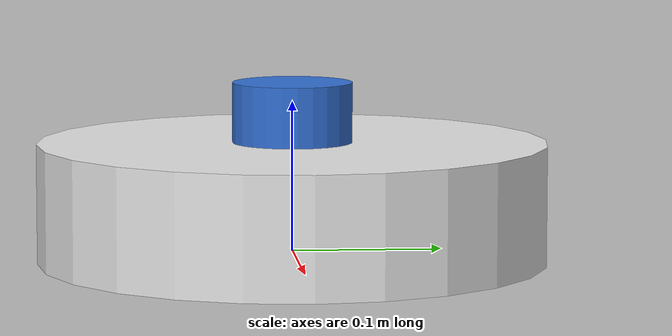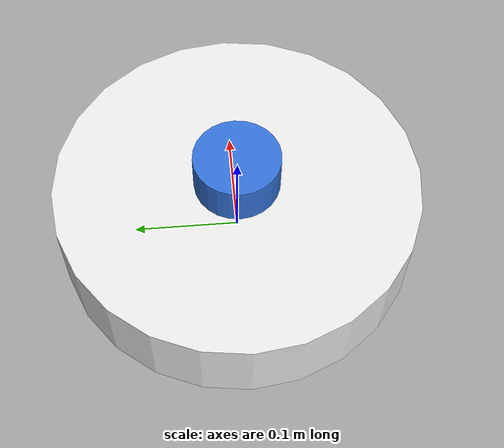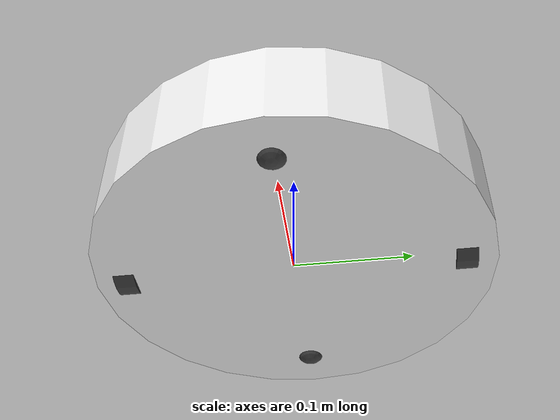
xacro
<?xml version="1.0"?>
<robot name="cleaning_robot" xmlns:xacro="http://www.ros.org/wiki/xacro">
  <xacro:include filename="$(find cleaning_robot_description)/urdf/materials.xacro"/>
  <xacro:include filename="$(find cleaning_robot_description)/urdf/base.xacro"/>
  <xacro:include filename="$(find cleaning_robot_description)/urdf/sensors.xacro"/>

  <gazebo>
    <plugin name="gazebo_ros_planar_move" filename="libgazebo_ros_planar_move.so">
      <ros>
        <remapping>cmd_vel:=cmd_vel</remapping>
        <remapping>odometry:=odom</remapping>
      </ros>
      <publish_odom>true</publish_odom>
      <publish_odom_tf>true</publish_odom_tf>
      <odometry_frame>odom</odometry_frame>
      <robot_base_frame>base_footprint</robot_base_frame>
    </plugin>
  </gazebo>
</robot>

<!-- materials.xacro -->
<robot xmlns:xacro="http://www.ros.org/wiki/xacro">
  <material name="white">
    <color rgba="0.92 0.92 0.92 1.0"/>
  </material>

  <material name="dark_grey">
    <color rgba="0.25 0.25 0.25 1.0"/>
  </material>

  <material name="blue">
    <color rgba="0.20 0.45 0.85 1.0"/>
  </material>
</robot>

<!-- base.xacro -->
<robot xmlns:xacro="http://www.ros.org/wiki/xacro">
  <xacro:property name="base_radius" value="0.17"/>
  <xacro:property name="base_height" value="0.08"/>
  <xacro:property name="base_mass" value="3.0"/>

  <xacro:property name="wheel_radius" value="0.033"/>
  <xacro:property name="wheel_width" value="0.018"/>
  <xacro:property name="wheel_mass" value="0.1"/>
  <xacro:property name="wheel_offset_y" value="0.144"/>
  <xacro:property name="wheel_offset_z" value="-0.01"/>

  <xacro:property name="caster_radius" value="0.015"/>
  <xacro:property name="caster_mass" value="0.05"/>

  <xacro:macro name="cylinder_inertia" params="m r h">
    <inertial>
      <mass value="${m}"/>
      <inertia ixx="${m * (3 * r * r + h * h) / 12}" ixy="0" ixz="0"
               iyy="${m * (3 * r * r + h * h) / 12}" iyz="0"
               izz="${m * r * r / 2}"/>
    </inertial>
  </xacro:macro>

  <xacro:macro name="sphere_inertia" params="m r">
    <inertial>
      <mass value="${m}"/>
      <inertia ixx="${2 * m * r * r / 5}" ixy="0" ixz="0"
               iyy="${2 * m * r * r / 5}" iyz="0"
               izz="${2 * m * r * r / 5}"/>
    </inertial>
  </xacro:macro>

  <link name="base_footprint"/>

  <joint name="base_footprint_joint" type="fixed">
    <parent link="base_footprint"/>
    <child link="base_link"/>
    <origin xyz="0 0 ${wheel_radius}" rpy="0 0 0"/>
  </joint>

  <link name="base_link">
    <visual>
      <geometry>
        <cylinder radius="${base_radius}" length="${base_height}"/>
      </geometry>
      <material name="white"/>
    </visual>
    <collision>
      <geometry>
        <cylinder radius="${base_radius}" length="${base_height}"/>
      </geometry>
    </collision>
    <xacro:cylinder_inertia m="${base_mass}" r="${base_radius}" h="${base_height}"/>
  </link>

  <xacro:macro name="wheel" params="name y_sign">
    <link name="${name}_wheel_link">
      <visual>
        <geometry>
          <cylinder radius="${wheel_radius}" length="${wheel_width}"/>
        </geometry>
        <origin xyz="0 0 0" rpy="${pi / 2} 0 0"/>
        <material name="dark_grey"/>
      </visual>
      <collision>
        <geometry>
          <cylinder radius="${wheel_radius}" length="${wheel_width}"/>
        </geometry>
        <origin xyz="0 0 0" rpy="${pi / 2} 0 0"/>
      </collision>
      <xacro:cylinder_inertia m="${wheel_mass}" r="${wheel_radius}" h="${wheel_width}"/>
    </link>

    <joint name="${name}_wheel_joint" type="continuous">
      <parent link="base_link"/>
      <child link="${name}_wheel_link"/>
      <origin xyz="0 ${y_sign * wheel_offset_y} ${wheel_offset_z}" rpy="0 0 0"/>
      <axis xyz="0 1 0"/>
    </joint>
  </xacro:macro>

  <xacro:wheel name="left" y_sign="1"/>
  <xacro:wheel name="right" y_sign="-1"/>

  <xacro:macro name="caster" params="name x_pos">
    <link name="${name}_caster_link">
      <visual>
        <geometry>
          <sphere radius="${caster_radius}"/>
        </geometry>
        <material name="dark_grey"/>
      </visual>
      <collision>
        <geometry>
          <sphere radius="${caster_radius}"/>
        </geometry>
      </collision>
      <xacro:sphere_inertia m="${caster_mass}" r="${caster_radius}"/>
    </link>

    <joint name="${name}_caster_joint" type="fixed">
      <parent link="base_link"/>
      <child link="${name}_caster_link"/>
      <origin xyz="${x_pos} 0 ${-base_height / 2 + caster_radius - 0.005}" rpy="0 0 0"/>
    </joint>
  </xacro:macro>

  <xacro:caster name="front" x_pos="0.13"/>
  <xacro:caster name="rear" x_pos="-0.13"/>

  <gazebo reference="base_link">
    <material>Gazebo/White</material>
    <mu1>0.2</mu1>
    <mu2>0.2</mu2>
  </gazebo>

  <gazebo reference="left_wheel_link">
    <material>Gazebo/DarkGrey</material>
    <mu1>2.0</mu1>
    <mu2>2.0</mu2>
  </gazebo>

  <gazebo reference="right_wheel_link">
    <material>Gazebo/DarkGrey</material>
    <mu1>2.0</mu1>
    <mu2>2.0</mu2>
  </gazebo>

  <gazebo reference="front_caster_link">
    <material>Gazebo/DarkGrey</material>
    <mu1>0.0</mu1>
    <mu2>0.0</mu2>
  </gazebo>

  <gazebo reference="rear_caster_link">
    <material>Gazebo/DarkGrey</material>
    <mu1>0.0</mu1>
    <mu2>0.0</mu2>
  </gazebo>
</robot>

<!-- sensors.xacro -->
<robot xmlns:xacro="http://www.ros.org/wiki/xacro">
  <link name="lidar_link">
    <visual>
      <geometry>
        <cylinder radius="0.04" length="0.04"/>
      </geometry>
      <material name="blue"/>
    </visual>
    <collision>
      <geometry>
        <cylinder radius="0.04" length="0.04"/>
      </geometry>
    </collision>
    <inertial>
      <mass value="0.1"/>
      <inertia ixx="0.0001" ixy="0" ixz="0"
               iyy="0.0001" iyz="0" izz="0.0001"/>
    </inertial>
  </link>

  <joint name="lidar_joint" type="fixed">
    <parent link="base_link"/>
    <child link="lidar_link"/>
    <origin xyz="0 0 0.06" rpy="0 0 0"/>
  </joint>

  <link name="imu_link">
    <inertial>
      <mass value="0.001"/>
      <inertia ixx="0.000001" ixy="0" ixz="0"
               iyy="0.000001" iyz="0" izz="0.000001"/>
    </inertial>
  </link>

  <joint name="imu_joint" type="fixed">
    <parent link="base_link"/>
    <child link="imu_link"/>
    <origin xyz="0 0 0" rpy="0 0 0"/>
  </joint>

  <gazebo reference="lidar_link">
    <material>Gazebo/Blue</material>
    <sensor name="lidar" type="ray">
      <always_on>true</always_on>
      <visualize>true</visualize>
      <update_rate>10</update_rate>
      <ray>
        <scan>
          <horizontal>
            <samples>360</samples>
            <resolution>1.0</resolution>
            <min_angle>-3.14159</min_angle>
            <max_angle>3.14159</max_angle>
          </horizontal>
        </scan>
        <range>
          <min>0.12</min>
          <max>8.0</max>
          <resolution>0.015</resolution>
        </range>
      </ray>
      <plugin name="scan" filename="libgazebo_ros_ray_sensor.so">
        <ros>
          <remapping>~/out:=scan</remapping>
        </ros>
        <output_type>sensor_msgs/LaserScan</output_type>
        <frame_name>lidar_link</frame_name>
      </plugin>
    </sensor>
  </gazebo>

  <gazebo reference="imu_link">
    <sensor name="imu_sensor" type="imu">
      <always_on>true</always_on>
      <update_rate>100</update_rate>
      <plugin name="imu_plugin" filename="libgazebo_ros_imu_sensor.so">
        <ros>
          <remapping>~/out:=imu</remapping>
        </ros>
      </plugin>
    </sensor>
  </gazebo>
</robot>
